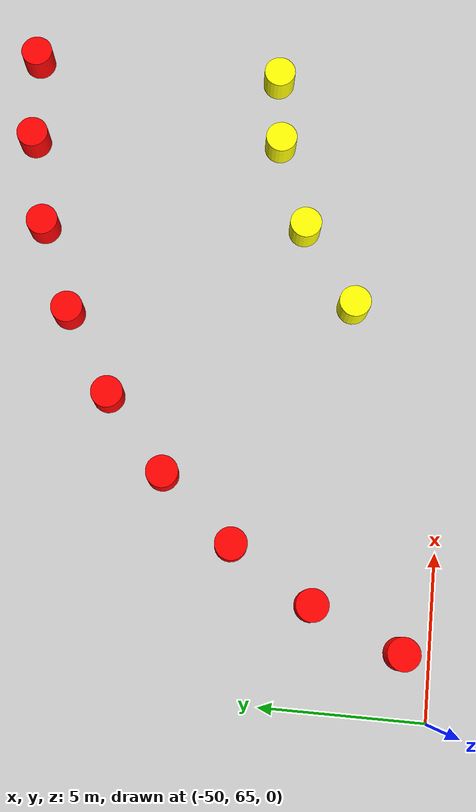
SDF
<sdf version="1.9">
 <world name="empty">
  <model name="ground_plane">
   <static>true</static>
   <link name="link">
    <collision name="collision">
     <geometry><plane><normal>0 0 1</normal><size>1000 1000</size></plane></geometry>
    </collision>
    <visual name="visual">
     <geometry><plane><normal>0 0 1</normal><size>1000 1000</size></plane></geometry>
     <material>
      <ambient>0.8 0.8 0.8 1</ambient>
      <diffuse>0.8 0.8 0.8 1</diffuse>
      <specular>0.8 0.8 0.8 1</specular>
     </material>
    </visual>
    <inertial>
     <mass>1</mass>
     <inertia><ixx>1</ixx><ixy>0</ixy><ixz>0</ixz><iyy>1</iyy><iyz>0</iyz><izz>1</izz></inertia>
    </inertial>
   </link>
  </model>
  <model name="red_cone_36">
   <pose>-48.060478323066235 65.90077306308713 0.5 0 -0 0</pose>
   <link name="cylinder_link">
    <inertial>
     <inertia>
      <ixx>0.14580000000000001</ixx>
      <ixy>0</ixy>
      <ixz>0</ixz>
      <iyy>0.14580000000000001</iyy>
      <iyz>0</iyz>
      <izz>0.125</izz>
     </inertia>
     <mass>1</mass>
    </inertial>
    <collision name="cylinder_collision">
     <geometry><cylinder><radius>0.5</radius><length>1</length></cylinder></geometry>
    </collision>
    <visual name="cylinder_visual">
     <geometry><cylinder><radius>0.5</radius><length>1</length></cylinder></geometry>
     <material><ambient>1 0 0 1</ambient><diffuse>1 0 0 1</diffuse><specular>1 1 1 1</specular></material>
    </visual>
   </link>
   <static>false</static>
  </model>
  <model name="red_cone_37">
   <pose>-46.90798054219762 68.66719066276187 0.5 0 -0 0</pose>
   <link name="cylinder_link">
    <inertial>
     <inertia>
      <ixx>0.14580000000000001</ixx>
      <ixy>0</ixy>
      <ixz>0</ixz>
      <iyy>0.14580000000000001</iyy>
      <iyz>0</iyz>
      <izz>0.125</izz>
     </inertia>
     <mass>1</mass>
    </inertial>
    <collision name="cylinder_collision">
     <geometry><cylinder><radius>0.5</radius><length>1</length></cylinder></geometry>
    </collision>
    <visual name="cylinder_visual">
     <geometry><cylinder><radius>0.5</radius><length>1</length></cylinder></geometry>
     <material><ambient>1 0 0 1</ambient><diffuse>1 0 0 1</diffuse><specular>1 1 1 1</specular></material>
    </visual>
   </link>
   <static>false</static>
  </model>
  <model name="red_cone_38">
   <pose>-45.334829185046885 71.21797726265454 0.5 0 -0 0</pose>
   <link name="cylinder_link">
    <inertial>
     <inertia>
      <ixx>0.14580000000000001</ixx>
      <ixy>0</ixy>
      <ixz>0</ixz>
      <iyy>0.14580000000000001</iyy>
      <iyz>0</iyz>
      <izz>0.125</izz>
     </inertia>
     <mass>1</mass>
    </inertial>
    <collision name="cylinder_collision">
     <geometry><cylinder><radius>0.5</radius><length>1</length></cylinder></geometry>
    </collision>
    <visual name="cylinder_visual">
     <geometry><cylinder><radius>0.5</radius><length>1</length></cylinder></geometry>
     <material><ambient>1 0 0 1</ambient><diffuse>1 0 0 1</diffuse><specular>1 1 1 1</specular></material>
    </visual>
   </link>
   <static>false</static>
  </model>
  <model name="red_cone_39">
   <pose>-43.38016267756423 73.4896718537523 0.5 0 -0 0</pose>
   <link name="cylinder_link">
    <inertial>
     <inertia>
      <ixx>0.14580000000000001</ixx>
      <ixy>0</ixy>
      <ixz>0</ixz>
      <iyy>0.14580000000000001</iyy>
      <iyz>0</iyz>
      <izz>0.125</izz>
     </inertia>
     <mass>1</mass>
    </inertial>
    <collision name="cylinder_collision">
     <geometry><cylinder><radius>0.5</radius><length>1</length></cylinder></geometry>
    </collision>
    <visual name="cylinder_visual">
     <geometry><cylinder><radius>0.5</radius><length>1</length></cylinder></geometry>
     <material><ambient>1 0 0 1</ambient><diffuse>1 0 0 1</diffuse><specular>1 1 1 1</specular></material>
    </visual>
   </link>
   <static>false</static>
  </model>
  <model name="red_cone_40">
   <pose>-41.092611159508785 75.42575695594681 0.5 0 -0 0</pose>
   <link name="cylinder_link">
    <inertial>
     <inertia>
      <ixx>0.14580000000000001</ixx>
      <ixy>0</ixy>
      <ixz>0</ixz>
      <iyy>0.14580000000000001</iyy>
      <iyz>0</iyz>
      <izz>0.125</izz>
     </inertia>
     <mass>1</mass>
    </inertial>
    <collision name="cylinder_collision">
     <geometry><cylinder><radius>0.5</radius><length>1</length></cylinder></geometry>
    </collision>
    <visual name="cylinder_visual">
     <geometry><cylinder><radius>0.5</radius><length>1</length></cylinder></geometry>
     <material><ambient>1 0 0 1</ambient><diffuse>1 0 0 1</diffuse><specular>1 1 1 1</specular></material>
    </visual>
   </link>
   <static>false</static>
  </model>
  <model name="red_cone_41">
   <pose>-38.5290866154075 76.97806471618236 0.5 0 -0 0</pose>
   <link name="cylinder_link">
    <inertial>
     <inertia>
      <ixx>0.14580000000000001</ixx>
      <ixy>0</ixy>
      <ixz>0</ixz>
      <iyy>0.14580000000000001</iyy>
      <iyz>0</iyz>
      <izz>0.125</izz>
     </inertia>
     <mass>1</mass>
    </inertial>
    <collision name="cylinder_collision">
     <geometry><cylinder><radius>0.5</radius><length>1</length></cylinder></geometry>
    </collision>
    <visual name="cylinder_visual">
     <geometry><cylinder><radius>0.5</radius><length>1</length></cylinder></geometry>
     <material><ambient>1 0 0 1</ambient><diffuse>1 0 0 1</diffuse><specular>1 1 1 1</specular></material>
    </visual>
   </link>
   <static>false</static>
  </model>
  <model name="red_cone_42">
   <pose>-35.753366961533224 78.10797527626814 0.5 0 -0 0</pose>
   <link name="cylinder_link">
    <inertial>
     <inertia>
      <ixx>0.14580000000000001</ixx>
      <ixy>0</ixy>
      <ixz>0</ixz>
      <iyy>0.14580000000000001</iyy>
      <iyz>0</iyz>
      <izz>0.125</izz>
     </inertia>
     <mass>1</mass>
    </inertial>
    <collision name="cylinder_collision">
     <geometry><cylinder><radius>0.5</radius><length>1</length></cylinder></geometry>
    </collision>
    <visual name="cylinder_visual">
     <geometry><cylinder><radius>0.5</radius><length>1</length></cylinder></geometry>
     <material><ambient>1 0 0 1</ambient><diffuse>1 0 0 1</diffuse><specular>1 1 1 1</specular></material>
    </visual>
   </link>
   <static>false</static>
  </model>
  <model name="red_cone_43">
   <pose>-32.83450931539595 78.78737759616635 0.5 0 -0 0</pose>
   <link name="cylinder_link">
    <inertial>
     <inertia>
      <ixx>0.14580000000000001</ixx>
      <ixy>0</ixy>
      <ixz>0</ixz>
      <iyy>0.14580000000000001</iyy>
      <iyz>0</iyz>
      <izz>0.125</izz>
     </inertia>
     <mass>1</mass>
    </inertial>
    <collision name="cylinder_collision">
     <geometry><cylinder><radius>0.5</radius><length>1</length></cylinder></geometry>
    </collision>
    <visual name="cylinder_visual">
     <geometry><cylinder><radius>0.5</radius><length>1</length></cylinder></geometry>
     <material><ambient>1 0 0 1</ambient><diffuse>1 0 0 1</diffuse><specular>1 1 1 1</specular></material>
    </visual>
   </link>
   <static>false</static>
  </model>
  <model name="red_cone_44">
   <pose>-30.000000000000004 79.0 0.5 0 -0 0</pose>
   <link name="cylinder_link">
    <inertial>
     <inertia>
      <ixx>0.14580000000000001</ixx>
      <ixy>0</ixy>
      <ixz>0</ixz>
      <iyy>0.14580000000000001</iyy>
      <iyz>0</iyz>
      <izz>0.125</izz>
     </inertia>
     <mass>1</mass>
    </inertial>
    <collision name="cylinder_collision">
     <geometry><cylinder><radius>0.5</radius><length>1</length></cylinder></geometry>
    </collision>
    <visual name="cylinder_visual">
     <geometry><cylinder><radius>0.5</radius><length>1</length></cylinder></geometry>
     <material><ambient>1 0 0 1</ambient><diffuse>1 0 0 1</diffuse><specular>1 1 1 1</specular></material>
    </visual>
   </link>
   <static>false</static>
  </model>
  <model name="yellow_cone_37">
   <pose>-37.51904378468305 68.02894641681081 0.5 0 -0 0</pose>
   <link name="cylinder_link">
    <inertial>
     <inertia>
      <ixx>0.14580000000000001</ixx>
      <ixy>0</ixy>
      <ixz>0</ixz>
      <iyy>0.14580000000000001</iyy>
      <iyz>0</iyz>
      <izz>0.125</izz>
     </inertia>
     <mass>1</mass>
    </inertial>
    <collision name="cylinder_collision">
     <geometry><cylinder><radius>0.5</radius><length>1</length></cylinder></geometry>
    </collision>
    <visual name="cylinder_visual">
     <geometry><cylinder><radius>0.5</radius><length>1</length></cylinder></geometry>
     <material><ambient>1 1 0 1</ambient><diffuse>1 1 0 1</diffuse><specular>1 1 1 1</specular></material>
    </visual>
   </link>
   <static>false</static>
  </model>
  <model name="yellow_cone_38">
   <pose>-35.078470665499 69.75751688185402 0.5 0 -0 0</pose>
   <link name="cylinder_link">
    <inertial>
     <inertia>
      <ixx>0.14580000000000001</ixx>
      <ixy>0</ixy>
      <ixz>0</ixz>
      <iyy>0.14580000000000001</iyy>
      <iyz>0</iyz>
      <izz>0.125</izz>
     </inertia>
     <mass>1</mass>
    </inertial>
    <collision name="cylinder_collision">
     <geometry><cylinder><radius>0.5</radius><length>1</length></cylinder></geometry>
    </collision>
    <visual name="cylinder_visual">
     <geometry><cylinder><radius>0.5</radius><length>1</length></cylinder></geometry>
     <material><ambient>1 1 0 1</ambient><diffuse>1 1 0 1</diffuse><specular>1 1 1 1</specular></material>
    </visual>
   </link>
   <static>false</static>
  </model>
  <model name="yellow_cone_39">
   <pose>-32.26249560957034 70.7648090376316 0.5 0 -0 0</pose>
   <link name="cylinder_link">
    <inertial>
     <inertia>
      <ixx>0.14580000000000001</ixx>
      <ixy>0</ixy>
      <ixz>0</ixz>
      <iyy>0.14580000000000001</iyy>
      <iyz>0</iyz>
      <izz>0.125</izz>
     </inertia>
     <mass>1</mass>
    </inertial>
    <collision name="cylinder_collision">
     <geometry><cylinder><radius>0.5</radius><length>1</length></cylinder></geometry>
    </collision>
    <visual name="cylinder_visual">
     <geometry><cylinder><radius>0.5</radius><length>1</length></cylinder></geometry>
     <material><ambient>1 1 0 1</ambient><diffuse>1 1 0 1</diffuse><specular>1 1 1 1</specular></material>
    </visual>
   </link>
   <static>false</static>
  </model>
  <model name="yellow_cone_40">
   <pose>-30.000000000000004 71.0 0.5 0 -0 0</pose>
   <link name="cylinder_link">
    <inertial>
     <inertia>
      <ixx>0.14580000000000001</ixx>
      <ixy>0</ixy>
      <ixz>0</ixz>
      <iyy>0.14580000000000001</iyy>
      <iyz>0</iyz>
      <izz>0.125</izz>
     </inertia>
     <mass>1</mass>
    </inertial>
    <collision name="cylinder_collision">
     <geometry><cylinder><radius>0.5</radius><length>1</length></cylinder></geometry>
    </collision>
    <visual name="cylinder_visual">
     <geometry><cylinder><radius>0.5</radius><length>1</length></cylinder></geometry>
     <material><ambient>1 1 0 1</ambient><diffuse>1 1 0 1</diffuse><specular>1 1 1 1</specular></material>
    </visual>
   </link>
   <static>false</static>
  </model>
 </world>
</sdf>
